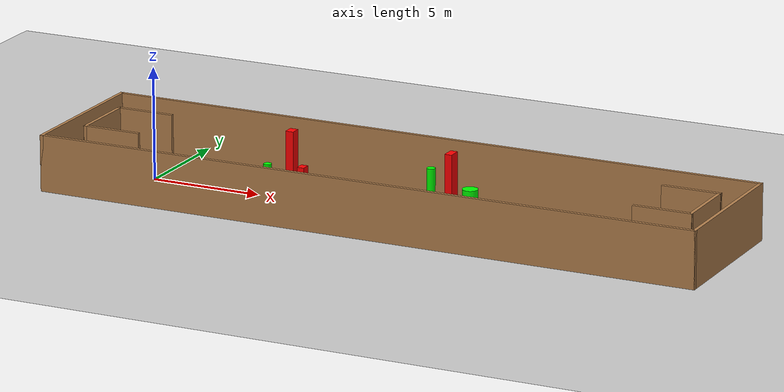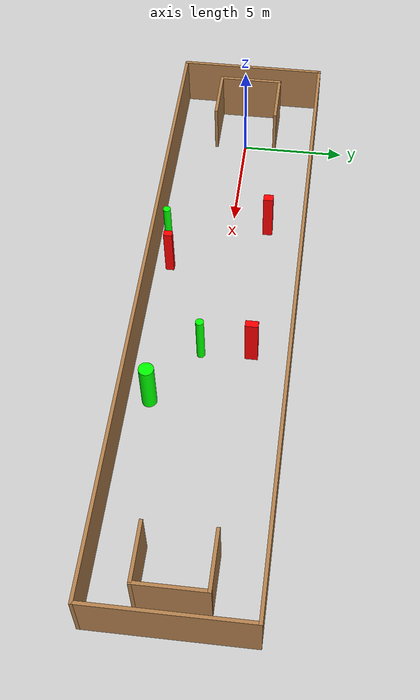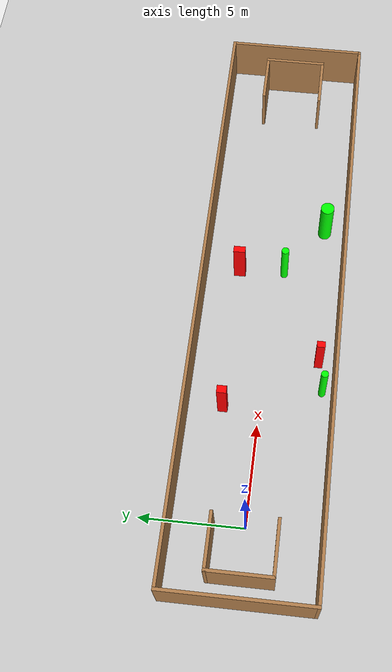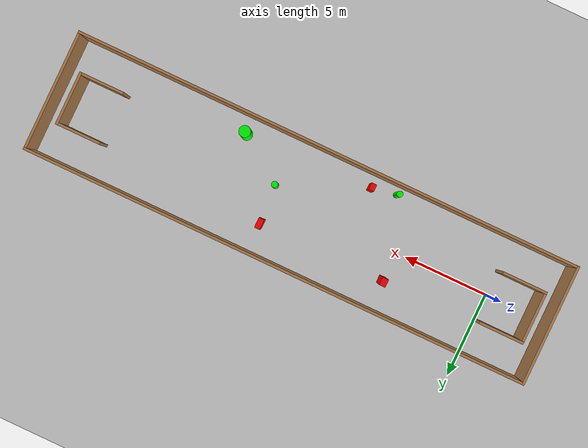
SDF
<sdf version="1.7">
 <world name="default">
  <light name="sun" type="directional">
   <pose>0 0 10 0 -0 0</pose>
   <diffuse>0.8 0.8 0.8 1</diffuse>
   <specular>0.2 0.2 0.2 1</specular>
   <attenuation>
    <range>1000</range>
    <constant>0.9</constant>
    <linear>0.01</linear>
    <quadratic>0.001</quadratic>
   </attenuation>
   <direction>-0.5 0.1 -0.9</direction>
   <spot><inner_angle>0</inner_angle><outer_angle>0</outer_angle><falloff>0</falloff></spot>
  </light>
  <model name="ground_plane">
   <static>1</static>
   <link name="link">
    <collision name="collision">
     <geometry><plane><normal>0 0 1</normal><size>100 100</size></plane></geometry>
     <surface>
      <contact><collide_bitmask>65535</collide_bitmask></contact>
      <friction><ode><mu>100</mu><mu2>50</mu2></ode></friction>
     </surface>
    </collision>
    <visual name="visual">
     <cast_shadows>0</cast_shadows>
     <geometry><plane><normal>0 0 1</normal><size>100 100</size></plane></geometry>
     <material>
      <script><uri>file://media/materials/scripts/gazebo.material</uri><name>Gazebo/Grey</name></script>
     </material>
    </visual>
   </link>
  </model>
  <gravity>0 0 -9.8</gravity>
  <magnetic_field>6e-06 2.3e-05 -4.2e-05</magnetic_field>
  <atmosphere type="adiabatic"/>
  <physics type="ode">
   <max_step_size>0.001</max_step_size>
   <real_time_factor>1</real_time_factor>
   <real_time_update_rate>1000</real_time_update_rate>
  </physics>
  <scene><ambient>0.4 0.4 0.4 1</ambient><background>0.7 0.7 0.7 1</background><shadows>1</shadows></scene>
  <spherical_coordinates>
   <surface_model>EARTH_WGS84</surface_model>
   <latitude_deg>0</latitude_deg>
   <longitude_deg>0</longitude_deg>
   <elevation>0</elevation>
   <heading_deg>0</heading_deg>
  </spherical_coordinates>
  <model name="my_base_walls">
   <link name="Wall_0">
    <collision name="Wall_0_Collision">
     <geometry><box><size>7.15 0.15 2.5</size></box></geometry>
     <pose>0 0 1.25 0 -0 0</pose>
    </collision>
    <visual name="Wall_0_Visual">
     <pose>0 0 1.25 0 -0 0</pose>
     <geometry><box><size>7.15 0.15 2.5</size></box></geometry>
     <material>
      <script><uri>file://media/materials/scripts/gazebo.material</uri><name>Gazebo/Wood</name></script>
      <ambient>1 1 1 1</ambient>
     </material>
     <meta><layer>0</layer></meta>
    </visual>
    <pose>-15 0 0 0 -0 1.5708</pose>
   </link>
   <link name="Wall_10">
    <collision name="Wall_10_Collision">
     <geometry><box><size>2.65 0.15 2.5</size></box></geometry>
     <pose>0 0 1.25 0 -0 0</pose>
    </collision>
    <visual name="Wall_10_Visual">
     <pose>0 0 1.25 0 -0 0</pose>
     <geometry><box><size>2.65 0.15 2.5</size></box></geometry>
     <material>
      <script><uri>file://media/materials/scripts/gazebo.material</uri><name>Gazebo/Wood</name></script>
      <ambient>1 1 1 1</ambient>
     </material>
     <meta><layer>0</layer></meta>
    </visual>
    <pose>-12.75 -1.5 0 0 -0 0</pose>
   </link>
   <link name="Wall_12">
    <collision name="Wall_12_Collision">
     <geometry><box><size>2.65 0.15 2.5</size></box></geometry>
     <pose>0 0 1.25 0 -0 0</pose>
    </collision>
    <visual name="Wall_12_Visual">
     <pose>0 0 1.25 0 -0 0</pose>
     <geometry><box><size>2.65 0.15 2.5</size></box></geometry>
     <material>
      <script><uri>file://media/materials/scripts/gazebo.material</uri><name>Gazebo/Wood</name></script>
      <ambient>1 1 1 1</ambient>
     </material>
     <meta><layer>0</layer></meta>
    </visual>
    <pose>-12.75 1.5 0 0 -0 0</pose>
   </link>
   <link name="Wall_14">
    <collision name="Wall_14_Collision">
     <geometry><box><size>3.15 0.15 2.5</size></box></geometry>
     <pose>0 0 1.25 0 -0 0</pose>
    </collision>
    <visual name="Wall_14_Visual">
     <pose>0 0 1.25 0 -0 0</pose>
     <geometry><box><size>3.15 0.15 2.5</size></box></geometry>
     <material>
      <script><uri>file://media/materials/scripts/gazebo.material</uri><name>Gazebo/Wood</name></script>
      <ambient>1 1 1 1</ambient>
     </material>
     <meta><layer>0</layer></meta>
    </visual>
    <pose>14 0 0 0 -0 -1.5708</pose>
   </link>
   <link name="Wall_15">
    <collision name="Wall_15_Collision">
     <geometry><box><size>2.65 0.15 2.5</size></box></geometry>
     <pose>0 0 1.25 0 -0 0</pose>
    </collision>
    <visual name="Wall_15_Visual">
     <pose>0 0 1.25 0 -0 0</pose>
     <geometry><box><size>2.65 0.15 2.5</size></box></geometry>
     <material>
      <script><uri>file://media/materials/scripts/gazebo.material</uri><name>Gazebo/Wood</name></script>
      <ambient>1 1 1 1</ambient>
     </material>
     <meta><layer>0</layer></meta>
    </visual>
    <pose>12.75 -1.5 0 0 -0 3.14159</pose>
   </link>
   <link name="Wall_17">
    <collision name="Wall_17_Collision">
     <geometry><box><size>2.65 0.15 2.5</size></box></geometry>
     <pose>0 0 1.25 0 -0 0</pose>
    </collision>
    <visual name="Wall_17_Visual">
     <pose>0 0 1.25 0 -0 0</pose>
     <geometry><box><size>2.65 0.15 2.5</size></box></geometry>
     <material>
      <script><uri>file://media/materials/scripts/gazebo.material</uri><name>Gazebo/Wood</name></script>
      <ambient>1 1 1 1</ambient>
     </material>
     <meta><layer>0</layer></meta>
    </visual>
    <pose>12.75 1.5 0 0 -0 3.14159</pose>
   </link>
   <link name="Wall_2">
    <collision name="Wall_2_Collision">
     <geometry><box><size>30.15 0.15 2.5</size></box></geometry>
     <pose>0 0 1.25 0 -0 0</pose>
    </collision>
    <visual name="Wall_2_Visual">
     <pose>0 0 1.25 0 -0 0</pose>
     <geometry><box><size>30.15 0.15 2.5</size></box></geometry>
     <material>
      <script><uri>file://media/materials/scripts/gazebo.material</uri><name>Gazebo/Wood</name></script>
      <ambient>1 1 1 1</ambient>
     </material>
     <meta><layer>0</layer></meta>
    </visual>
    <pose>-0 -3.5 0 0 -0 0</pose>
   </link>
   <link name="Wall_4">
    <collision name="Wall_4_Collision">
     <geometry><box><size>30.15 0.15 2.5</size></box></geometry>
     <pose>0 0 1.25 0 -0 0</pose>
    </collision>
    <visual name="Wall_4_Visual">
     <pose>0 0 1.25 0 -0 0</pose>
     <geometry><box><size>30.15 0.15 2.5</size></box></geometry>
     <material>
      <script><uri>file://media/materials/scripts/gazebo.material</uri><name>Gazebo/Wood</name></script>
      <ambient>1 1 1 1</ambient>
     </material>
     <meta><layer>0</layer></meta>
    </visual>
    <pose>-0 3.5 0 0 -0 0</pose>
   </link>
   <link name="Wall_6">
    <collision name="Wall_6_Collision">
     <geometry><box><size>7.15 0.15 2.5</size></box></geometry>
     <pose>0 0 1.25 0 -0 0</pose>
    </collision>
    <visual name="Wall_6_Visual">
     <pose>0 0 1.25 0 -0 0</pose>
     <geometry><box><size>7.15 0.15 2.5</size></box></geometry>
     <material>
      <script><uri>file://media/materials/scripts/gazebo.material</uri><name>Gazebo/Wood</name></script>
      <ambient>1 1 1 1</ambient>
     </material>
     <meta><layer>0</layer></meta>
    </visual>
    <pose>15 0 0 0 -0 -1.5708</pose>
   </link>
   <link name="Wall_9">
    <collision name="Wall_9_Collision">
     <geometry><box><size>3.15 0.15 2.5</size></box></geometry>
     <pose>0 0 1.25 0 -0 0</pose>
    </collision>
    <visual name="Wall_9_Visual">
     <pose>0 0 1.25 0 -0 0</pose>
     <geometry><box><size>3.15 0.15 2.5</size></box></geometry>
     <material>
      <script><uri>file://media/materials/scripts/gazebo.material</uri><name>Gazebo/Wood</name></script>
      <ambient>1 1 1 1</ambient>
     </material>
     <meta><layer>0</layer></meta>
    </visual>
    <pose>-14 0 0 0 -0 -1.5708</pose>
   </link>
   <static>1</static>
   <pose>11.5 0 0 0 -0 0</pose>
  </model>
  <model name="cylinder1">
   <static>1</static>
   <link name="link">
    <inertial>
     <mass>1</mass>
     <inertia><ixx>0.5</ixx><ixy>0</ixy><ixz>0</ixz><iyy>0.5</iyy><iyz>0</iyz><izz>1</izz></inertia>
    </inertial>
    <collision name="collision">
     <geometry><cylinder><radius>0.3367646318035997</radius><length>2.5</length></cylinder></geometry>
    </collision>
    <visual name="visual">
     <geometry><cylinder><radius>0.3367646318035997</radius><length>2.5</length></cylinder></geometry>
     <material>
      <ambient>0 1 0 1</ambient>
      <diffuse>0 1 0 1</diffuse>
      <specular>0.1 0.1 0.1 1</specular>
      <emissive>0 0 0 0</emissive>
     </material>
    </visual>
   </link>
   <pose>16.067649811607488 -2.4554329975491545 1.25 0 0 0</pose>
  </model>
  <model name="cylinder2">
   <static>1</static>
   <link name="link">
    <inertial>
     <mass>1</mass>
     <inertia><ixx>0.5</ixx><ixy>0</ixy><ixz>0</ixz><iyy>0.5</iyy><iyz>0</iyz><izz>1</izz></inertia>
    </inertial>
    <collision name="collision">
     <geometry><cylinder><radius>0.17531036059029037</radius><length>2.5</length></cylinder></geometry>
    </collision>
    <visual name="visual">
     <geometry><cylinder><radius>0.17531036059029037</radius><length>2.5</length></cylinder></geometry>
     <material>
      <ambient>0 1 0 1</ambient>
      <diffuse>0 1 0 1</diffuse>
      <specular>0.1 0.1 0.1 1</specular>
      <emissive>0 0 0 0</emissive>
     </material>
    </visual>
   </link>
   <pose>6.973521197907596 -2.967717126097096 1.25 0 0 0</pose>
  </model>
  <model name="cylinder3">
   <static>1</static>
   <link name="link">
    <inertial>
     <mass>1</mass>
     <inertia><ixx>0.5</ixx><ixy>0</ixy><ixz>0</ixz><iyy>0.5</iyy><iyz>0</iyz><izz>1</izz></inertia>
    </inertial>
    <collision name="collision">
     <geometry><cylinder><radius>0.1853921112050669</radius><length>2.5</length></cylinder></geometry>
    </collision>
    <visual name="visual">
     <geometry><cylinder><radius>0.1853921112050669</radius><length>2.5</length></cylinder></geometry>
     <material>
      <ambient>0 1 0 1</ambient>
      <diffuse>0 1 0 1</diffuse>
      <specular>0.1 0.1 0.1 1</specular>
      <emissive>0 0 0 0</emissive>
     </material>
    </visual>
   </link>
   <pose>13.36777493917603 -0.5411084298536819 1.25 0 0 0</pose>
  </model>
  <model name="box1">
   <static>1</static>
   <link name="link">
    <inertial>
     <mass>1</mass>
     <inertia><ixx>0.083</ixx><ixy>0</ixy><ixz>0</ixz><iyy>0.083</iyy><iyz>0</iyz><izz>0.083</izz></inertia>
    </inertial>
    <collision name="collision">
     <geometry><box><size>0.3218208033496136 0.586742249514006 2.5</size></box></geometry>
    </collision>
    <visual name="visual">
     <geometry><box><size>0.3218208033496136 0.586742249514006 2.5</size></box></geometry>
     <material>
      <ambient>1 0 0 1</ambient>
      <diffuse>1 0 0 1</diffuse>
      <specular>0.1 0.1 0.1 1</specular>
      <emissive>0 0 0 0</emissive>
     </material>
    </visual>
    <sensor name="my_contact" type="contact">
     <contact><collision>box_collision</collision><topic>__default_topic__</topic></contact>
    </sensor>
   </link>
   <pose>13.213164687912286 1.7407059016911521 1.25 0 0 0</pose>
  </model>
  <model name="box2">
   <static>1</static>
   <link name="link">
    <inertial>
     <mass>1</mass>
     <inertia><ixx>0.083</ixx><ixy>0</ixy><ixz>0</ixz><iyy>0.083</iyy><iyz>0</iyz><izz>0.083</izz></inertia>
    </inertial>
    <collision name="collision">
     <geometry><box><size>0.3086593957216389 0.4002438243994138 2.5</size></box></geometry>
    </collision>
    <visual name="visual">
     <geometry><box><size>0.3086593957216389 0.4002438243994138 2.5</size></box></geometry>
     <material>
      <ambient>1 0 0 1</ambient>
      <diffuse>1 0 0 1</diffuse>
      <specular>0.1 0.1 0.1 1</specular>
      <emissive>0 0 0 0</emissive>
     </material>
    </visual>
    <sensor name="my_contact" type="contact">
     <contact><collision>box_collision</collision><topic>__default_topic__</topic></contact>
    </sensor>
   </link>
   <pose>8.47013443886284 -2.6884034098808733 1.25 0 0 0</pose>
  </model>
  <model name="box3">
   <static>1</static>
   <link name="link">
    <inertial>
     <mass>1</mass>
     <inertia><ixx>0.083</ixx><ixy>0</ixy><ixz>0</ixz><iyy>0.083</iyy><iyz>0</iyz><izz>0.083</izz></inertia>
    </inertial>
    <collision name="collision">
     <geometry><box><size>0.36408422943051905 0.46396818767566056 2.5</size></box></geometry>
    </collision>
    <visual name="visual">
     <geometry><box><size>0.36408422943051905 0.46396818767566056 2.5</size></box></geometry>
     <material>
      <ambient>1 0 0 1</ambient>
      <diffuse>1 0 0 1</diffuse>
      <specular>0.1 0.1 0.1 1</specular>
      <emissive>0 0 0 0</emissive>
     </material>
    </visual>
    <sensor name="my_contact" type="contact">
     <contact><collision>box_collision</collision><topic>__default_topic__</topic></contact>
    </sensor>
   </link>
   <pose>5.713021948177355 1.7360090572455062 1.25 0 0 0</pose>
  </model>
 </world>
</sdf>
